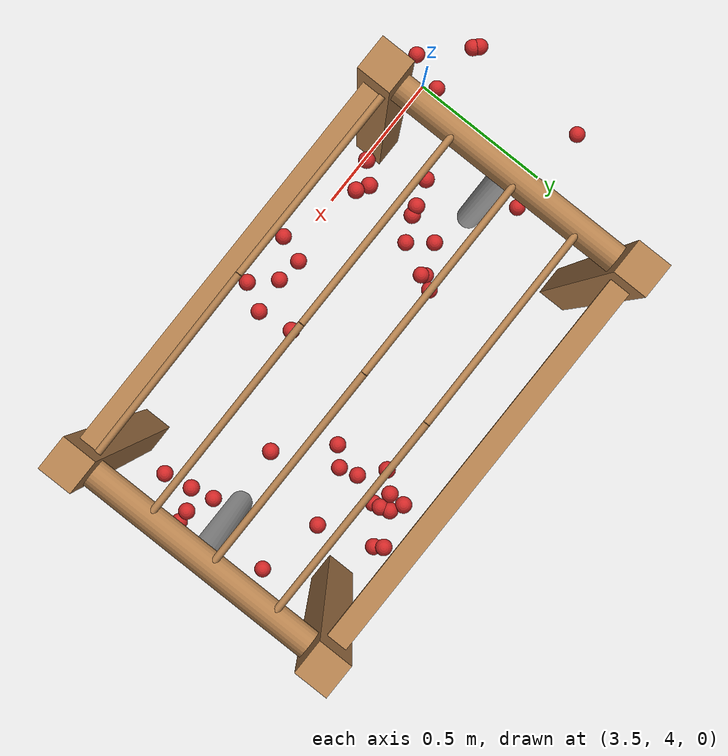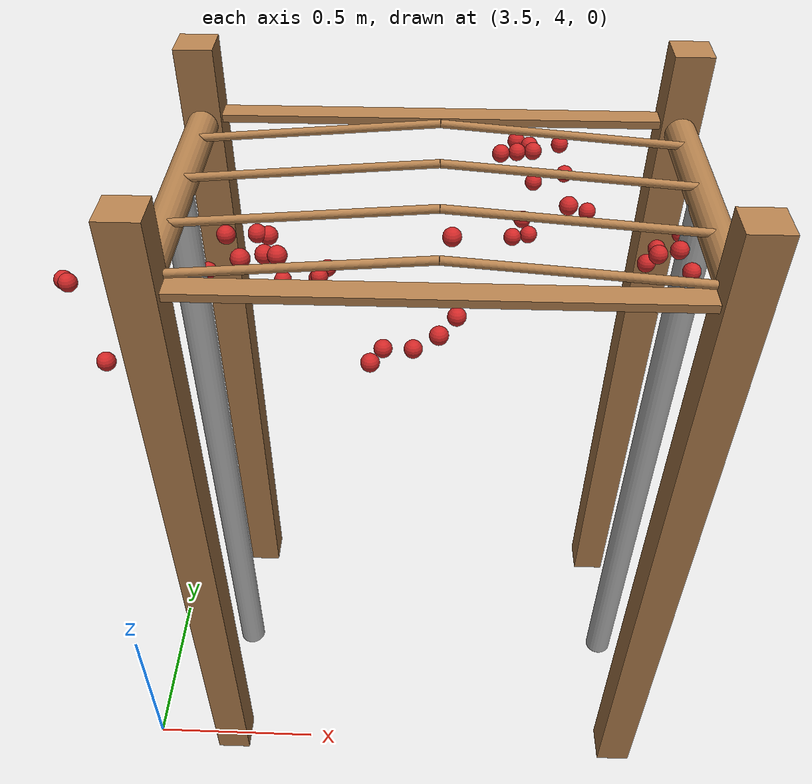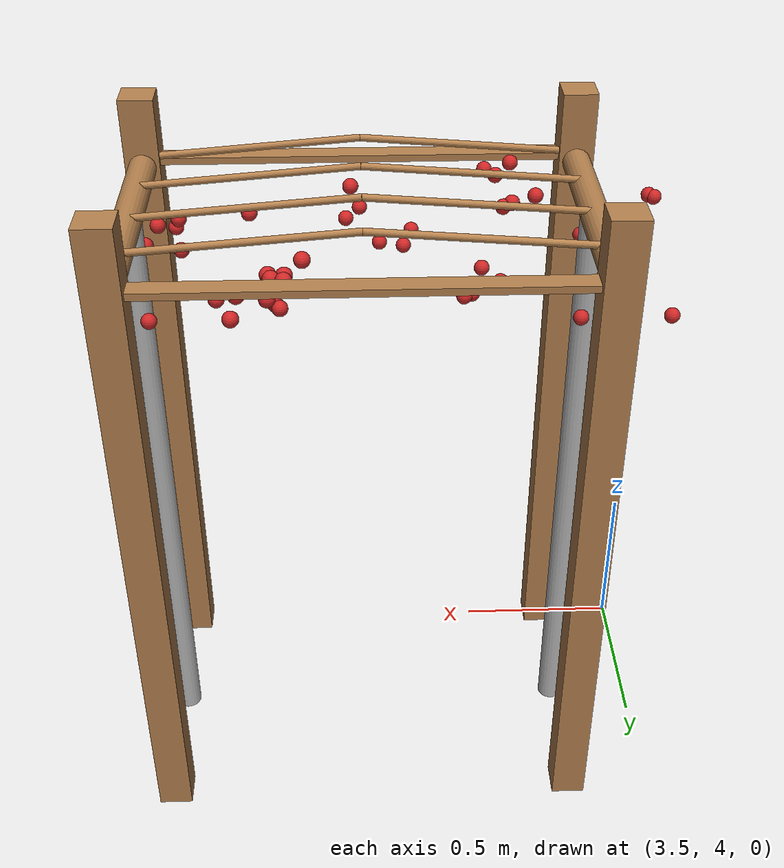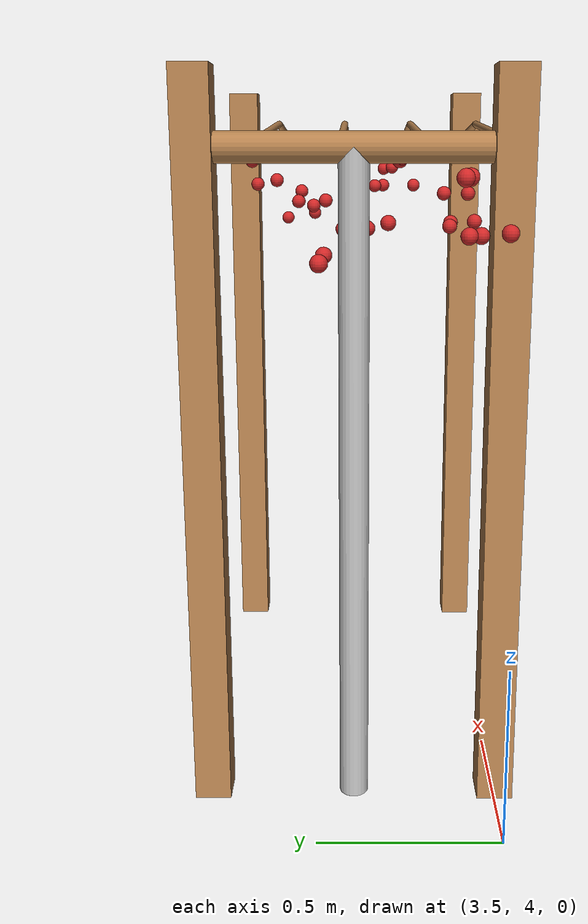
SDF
<sdf version="1.4">
 <model name="pergola">
  <include><name>post_26</name><pose>3.75 4.0 0 0 0 0</pose><uri>model://post</uri></include>
  <include><name>post_27</name><pose>3.75 4.800000000000001 0 0 0 0</pose><uri>model://post</uri></include>
  <include><name>post_33</name><pose>5.0 4.0 0 0 0 0</pose><uri>model://post</uri></include>
  <include><name>post_34</name><pose>5.0 4.800000000000001 0 0 0 0</pose><uri>model://post</uri></include>
  <link name="beam_26">
   <pose>4.375 4.0 1.81 0 0 0</pose>
   <collision name="collision"><geometry><box><size>1.25 0.06 0.02</size></box></geometry></collision>
   <visual name="visual">
    <geometry><box><size>1.25 0.06 0.02</size></box></geometry>
    <material><script><name>Gazebo/Wood</name></script></material>
   </visual>
   <inertial>
    <mass>5</mass>
    <inertia>
     <ixx>0.0016666666666666668</ixx>
     <ixy>0.0</ixy>
     <ixz>0.0</ixz>
     <iyy>0.6525416666666667</iyy>
     <iyz>0.0</iyz>
     <izz>0.6512083333333333</izz>
    </inertia>
   </inertial>
  </link>
  <link name="beam_27">
   <pose>4.375 4.800000000000001 1.81 0 0 0</pose>
   <collision name="collision"><geometry><box><size>1.25 0.06 0.02</size></box></geometry></collision>
   <visual name="visual">
    <geometry><box><size>1.25 0.06 0.02</size></box></geometry>
    <material><script><name>Gazebo/Wood</name></script></material>
   </visual>
   <inertial>
    <mass>5</mass>
    <inertia>
     <ixx>0.0016666666666666668</ixx>
     <ixy>0.0</ixy>
     <ixz>0.0</ixz>
     <iyy>0.6525416666666667</iyy>
     <iyz>0.0</iyz>
     <izz>0.6512083333333333</izz>
    </inertia>
   </inertial>
  </link>
  <include><name>tree_23</name><pose>3.75 4.4 0 0 0 0</pose><uri>model://tree_trunk</uri></include>
  <include><name>tree_29</name><pose>5.0 4.4 0 0 0 0</pose><uri>model://tree_trunk</uri></include>
  <link name="baseBranch_23">
   <pose>3.75 4.4 1.8 1.5707963267948966 0 0</pose>
   <collision name="collision">
    <geometry><cylinder><radius>0.04</radius><length>0.74</length></cylinder></geometry>
   </collision>
   <visual name="visual">
    <geometry><cylinder><radius>0.04</radius><length>0.74</length></cylinder></geometry>
    <material><script><name>Gazebo/WoodFloor</name></script></material>
   </visual>
   <inertial>
    <mass>10</mass>
    <inertia>
     <ixx>0.4603333333333333</ixx>
     <ixy>0.0</ixy>
     <ixz>0.0</ixz>
     <iyy>0.4603333333333333</iyy>
     <iyz>0.0</iyz>
     <izz>0.008</izz>
    </inertia>
   </inertial>
  </link>
  <link name="baseBranch_29">
   <pose>5.0 4.4 1.8 1.5707963267948966 0 0</pose>
   <collision name="collision">
    <geometry><cylinder><radius>0.04</radius><length>0.74</length></cylinder></geometry>
   </collision>
   <visual name="visual">
    <geometry><cylinder><radius>0.04</radius><length>0.74</length></cylinder></geometry>
    <material><script><name>Gazebo/WoodFloor</name></script></material>
   </visual>
   <inertial>
    <mass>10</mass>
    <inertia>
     <ixx>0.4603333333333333</ixx>
     <ixy>0.0</ixy>
     <ixz>0.0</ixz>
     <iyy>0.4603333333333333</iyy>
     <iyz>0.0</iyz>
     <izz>0.008</izz>
    </inertia>
   </inertial>
  </link>
  <link name="vine_184">
   <pose>4.0625 4.03 1.85 0 1.4909663410826592 0</pose>
   <collision name="collision">
    <geometry><cylinder><radius>0.01</radius><length>0.6269968101992226</length></cylinder></geometry>
   </collision>
   <visual name="visual">
    <geometry><cylinder><radius>0.01</radius><length>0.6269968101992226</length></cylinder></geometry>
    <material><script><name>Gazebo/WoodFloor</name></script></material>
   </visual>
   <inertial>
    <mass>5</mass>
    <inertia>
     <ixx>0.1639270833333333</ixx>
     <ixy>0.0</ixy>
     <ixz>0.0</ixz>
     <iyy>0.1639270833333333</iyy>
     <iyz>0.0</iyz>
     <izz>0.00025</izz>
    </inertia>
   </inertial>
  </link>
  <link name="vine_185">
   <pose>4.6875 4.03 1.85 0 -1.4909663410826592 0</pose>
   <collision name="collision">
    <geometry><cylinder><radius>0.01</radius><length>0.6269968101992226</length></cylinder></geometry>
   </collision>
   <visual name="visual">
    <geometry><cylinder><radius>0.01</radius><length>0.6269968101992226</length></cylinder></geometry>
    <material><script><name>Gazebo/WoodFloor</name></script></material>
   </visual>
   <inertial>
    <mass>5</mass>
    <inertia>
     <ixx>0.1639270833333333</ixx>
     <ixy>0.0</ixy>
     <ixz>0.0</ixz>
     <iyy>0.1639270833333333</iyy>
     <iyz>0.0</iyz>
     <izz>0.00025</izz>
    </inertia>
   </inertial>
  </link>
  <link name="vine_186">
   <pose>4.0625 4.23 1.85 0 1.4909663410826592 0</pose>
   <collision name="collision">
    <geometry><cylinder><radius>0.01</radius><length>0.6269968101992226</length></cylinder></geometry>
   </collision>
   <visual name="visual">
    <geometry><cylinder><radius>0.01</radius><length>0.6269968101992226</length></cylinder></geometry>
    <material><script><name>Gazebo/WoodFloor</name></script></material>
   </visual>
   <inertial>
    <mass>5</mass>
    <inertia>
     <ixx>0.1639270833333333</ixx>
     <ixy>0.0</ixy>
     <ixz>0.0</ixz>
     <iyy>0.1639270833333333</iyy>
     <iyz>0.0</iyz>
     <izz>0.00025</izz>
    </inertia>
   </inertial>
  </link>
  <link name="vine_187">
   <pose>4.6875 4.23 1.85 0 -1.4909663410826592 0</pose>
   <collision name="collision">
    <geometry><cylinder><radius>0.01</radius><length>0.6269968101992226</length></cylinder></geometry>
   </collision>
   <visual name="visual">
    <geometry><cylinder><radius>0.01</radius><length>0.6269968101992226</length></cylinder></geometry>
    <material><script><name>Gazebo/WoodFloor</name></script></material>
   </visual>
   <inertial>
    <mass>5</mass>
    <inertia>
     <ixx>0.1639270833333333</ixx>
     <ixy>0.0</ixy>
     <ixz>0.0</ixz>
     <iyy>0.1639270833333333</iyy>
     <iyz>0.0</iyz>
     <izz>0.00025</izz>
    </inertia>
   </inertial>
  </link>
  <link name="vine_188">
   <pose>4.0625 4.430000000000001 1.85 0 1.4909663410826592 0</pose>
   <collision name="collision">
    <geometry><cylinder><radius>0.01</radius><length>0.6269968101992226</length></cylinder></geometry>
   </collision>
   <visual name="visual">
    <geometry><cylinder><radius>0.01</radius><length>0.6269968101992226</length></cylinder></geometry>
    <material><script><name>Gazebo/WoodFloor</name></script></material>
   </visual>
   <inertial>
    <mass>5</mass>
    <inertia>
     <ixx>0.1639270833333333</ixx>
     <ixy>0.0</ixy>
     <ixz>0.0</ixz>
     <iyy>0.1639270833333333</iyy>
     <iyz>0.0</iyz>
     <izz>0.00025</izz>
    </inertia>
   </inertial>
  </link>
  <link name="vine_189">
   <pose>4.6875 4.430000000000001 1.85 0 -1.4909663410826592 0</pose>
   <collision name="collision">
    <geometry><cylinder><radius>0.01</radius><length>0.6269968101992226</length></cylinder></geometry>
   </collision>
   <visual name="visual">
    <geometry><cylinder><radius>0.01</radius><length>0.6269968101992226</length></cylinder></geometry>
    <material><script><name>Gazebo/WoodFloor</name></script></material>
   </visual>
   <inertial>
    <mass>5</mass>
    <inertia>
     <ixx>0.1639270833333333</ixx>
     <ixy>0.0</ixy>
     <ixz>0.0</ixz>
     <iyy>0.1639270833333333</iyy>
     <iyz>0.0</iyz>
     <izz>0.00025</izz>
    </inertia>
   </inertial>
  </link>
  <link name="vine_190">
   <pose>4.0625 4.630000000000001 1.85 0 1.4909663410826592 0</pose>
   <collision name="collision">
    <geometry><cylinder><radius>0.01</radius><length>0.6269968101992226</length></cylinder></geometry>
   </collision>
   <visual name="visual">
    <geometry><cylinder><radius>0.01</radius><length>0.6269968101992226</length></cylinder></geometry>
    <material><script><name>Gazebo/WoodFloor</name></script></material>
   </visual>
   <inertial>
    <mass>5</mass>
    <inertia>
     <ixx>0.1639270833333333</ixx>
     <ixy>0.0</ixy>
     <ixz>0.0</ixz>
     <iyy>0.1639270833333333</iyy>
     <iyz>0.0</iyz>
     <izz>0.00025</izz>
    </inertia>
   </inertial>
  </link>
  <link name="vine_191">
   <pose>4.6875 4.630000000000001 1.85 0 -1.4909663410826592 0</pose>
   <collision name="collision">
    <geometry><cylinder><radius>0.01</radius><length>0.6269968101992226</length></cylinder></geometry>
   </collision>
   <visual name="visual">
    <geometry><cylinder><radius>0.01</radius><length>0.6269968101992226</length></cylinder></geometry>
    <material><script><name>Gazebo/WoodFloor</name></script></material>
   </visual>
   <inertial>
    <mass>5</mass>
    <inertia>
     <ixx>0.1639270833333333</ixx>
     <ixy>0.0</ixy>
     <ixz>0.0</ixz>
     <iyy>0.1639270833333333</iyy>
     <iyz>0.0</iyz>
     <izz>0.00025</izz>
    </inertia>
   </inertial>
  </link>
  <link name="fruit_34">
   <pose>3.633366806264248 4.01842882549842 1.595375198827809 0 0 0</pose>
   <collision name="fruit_collision_34"><geometry><sphere><radius>0.022</radius></sphere></geometry></collision>
   <visual name="visual">
    <geometry><sphere><radius>0.022</radius></sphere></geometry>
    <material><script><name>Gazebo/Red</name></script></material>
   </visual>
   <inertial>
    <mass>0.05</mass>
    <inertia>
     <ixx>9.679999999999999e-06</ixx>
     <ixy>0.0</ixy>
     <ixz>0.0</ixz>
     <iyy>9.679999999999999e-06</iyy>
     <iyz>0.0</iyz>
     <izz>9.679999999999999e-06</izz>
    </inertia>
   </inertial>
   <sensor name="fruit_contact_34" type="contact">
    <plugin name="contact_plugin_34" filename="libcontact_plugin.so"/>
    <contact><collision>fruit_collision_34</collision><topic>fruit_contact_topic_34</topic></contact>
   </sensor>
  </link>
  <link name="fruit_53">
   <pose>4.760283831128383 4.5838649324843175 1.6637483692247248 0 0 0</pose>
   <collision name="fruit_collision_53"><geometry><sphere><radius>0.022</radius></sphere></geometry></collision>
   <visual name="visual">
    <geometry><sphere><radius>0.022</radius></sphere></geometry>
    <material><script><name>Gazebo/Red</name></script></material>
   </visual>
   <inertial>
    <mass>0.05</mass>
    <inertia>
     <ixx>9.679999999999999e-06</ixx>
     <ixy>0.0</ixy>
     <ixz>0.0</ixz>
     <iyy>9.679999999999999e-06</iyy>
     <iyz>0.0</iyz>
     <izz>9.679999999999999e-06</izz>
    </inertia>
   </inertial>
   <sensor name="fruit_contact_53" type="contact">
    <plugin name="contact_plugin_53" filename="libcontact_plugin.so"/>
    <contact><collision>fruit_collision_53</collision><topic>fruit_contact_topic_53</topic></contact>
   </sensor>
  </link>
  <link name="fruit_62">
   <pose>3.7765094138899555 4.477984269675128 1.5301336264787333 0 0 0</pose>
   <collision name="fruit_collision_62"><geometry><sphere><radius>0.022</radius></sphere></geometry></collision>
   <visual name="visual">
    <geometry><sphere><radius>0.022</radius></sphere></geometry>
    <material><script><name>Gazebo/Red</name></script></material>
   </visual>
   <inertial>
    <mass>0.05</mass>
    <inertia>
     <ixx>9.679999999999999e-06</ixx>
     <ixy>0.0</ixy>
     <ixz>0.0</ixz>
     <iyy>9.679999999999999e-06</iyy>
     <iyz>0.0</iyz>
     <izz>9.679999999999999e-06</izz>
    </inertia>
   </inertial>
   <sensor name="fruit_contact_62" type="contact">
    <plugin name="contact_plugin_62" filename="libcontact_plugin.so"/>
    <contact><collision>fruit_collision_62</collision><topic>fruit_contact_topic_62</topic></contact>
   </sensor>
  </link>
  <link name="fruit_69">
   <pose>4.380215721856354 4.046890502440738 1.667346945619753 0 0 0</pose>
   <collision name="fruit_collision_69"><geometry><sphere><radius>0.022</radius></sphere></geometry></collision>
   <visual name="visual">
    <geometry><sphere><radius>0.022</radius></sphere></geometry>
    <material><script><name>Gazebo/Red</name></script></material>
   </visual>
   <inertial>
    <mass>0.05</mass>
    <inertia>
     <ixx>9.679999999999999e-06</ixx>
     <ixy>0.0</ixy>
     <ixz>0.0</ixz>
     <iyy>9.679999999999999e-06</iyy>
     <iyz>0.0</iyz>
     <izz>9.679999999999999e-06</izz>
    </inertia>
   </inertial>
   <sensor name="fruit_contact_69" type="contact">
    <plugin name="contact_plugin_69" filename="libcontact_plugin.so"/>
    <contact><collision>fruit_collision_69</collision><topic>fruit_contact_topic_69</topic></contact>
   </sensor>
  </link>
  <link name="fruit_87">
   <pose>4.622908755261192 4.65855428247966 1.7032987600316671 0 0 0</pose>
   <collision name="fruit_collision_87"><geometry><sphere><radius>0.022</radius></sphere></geometry></collision>
   <visual name="visual">
    <geometry><sphere><radius>0.022</radius></sphere></geometry>
    <material><script><name>Gazebo/Red</name></script></material>
   </visual>
   <inertial>
    <mass>0.05</mass>
    <inertia>
     <ixx>9.679999999999999e-06</ixx>
     <ixy>0.0</ixy>
     <ixz>0.0</ixz>
     <iyy>9.679999999999999e-06</iyy>
     <iyz>0.0</iyz>
     <izz>9.679999999999999e-06</izz>
    </inertia>
   </inertial>
   <sensor name="fruit_contact_87" type="contact">
    <plugin name="contact_plugin_87" filename="libcontact_plugin.so"/>
    <contact><collision>fruit_collision_87</collision><topic>fruit_contact_topic_87</topic></contact>
   </sensor>
  </link>
  <link name="fruit_107">
   <pose>4.901337182179258 4.189911536854268 1.6806168631913343 0 0 0</pose>
   <collision name="fruit_collision_107"><geometry><sphere><radius>0.022</radius></sphere></geometry></collision>
   <visual name="visual">
    <geometry><sphere><radius>0.022</radius></sphere></geometry>
    <material><script><name>Gazebo/Red</name></script></material>
   </visual>
   <inertial>
    <mass>0.05</mass>
    <inertia>
     <ixx>9.679999999999999e-06</ixx>
     <ixy>0.0</ixy>
     <ixz>0.0</ixz>
     <iyy>9.679999999999999e-06</iyy>
     <iyz>0.0</iyz>
     <izz>9.679999999999999e-06</izz>
    </inertia>
   </inertial>
   <sensor name="fruit_contact_107" type="contact">
    <plugin name="contact_plugin_107" filename="libcontact_plugin.so"/>
    <contact><collision>fruit_collision_107</collision><topic>fruit_contact_topic_107</topic></contact>
   </sensor>
  </link>
  <link name="fruit_160">
   <pose>4.038669537416379 4.304206804560227 1.5968484310364162 0 0 0</pose>
   <collision name="fruit_collision_160"><geometry><sphere><radius>0.022</radius></sphere></geometry></collision>
   <visual name="visual">
    <geometry><sphere><radius>0.022</radius></sphere></geometry>
    <material><script><name>Gazebo/Red</name></script></material>
   </visual>
   <inertial>
    <mass>0.05</mass>
    <inertia>
     <ixx>9.679999999999999e-06</ixx>
     <ixy>0.0</ixy>
     <ixz>0.0</ixz>
     <iyy>9.679999999999999e-06</iyy>
     <iyz>0.0</iyz>
     <izz>9.679999999999999e-06</izz>
    </inertia>
   </inertial>
   <sensor name="fruit_contact_160" type="contact">
    <plugin name="contact_plugin_160" filename="libcontact_plugin.so"/>
    <contact><collision>fruit_collision_160</collision><topic>fruit_contact_topic_160</topic></contact>
   </sensor>
  </link>
  <link name="fruit_172">
   <pose>4.880836403724391 4.267831834348843 1.743617449965048 0 0 0</pose>
   <collision name="fruit_collision_172"><geometry><sphere><radius>0.022</radius></sphere></geometry></collision>
   <visual name="visual">
    <geometry><sphere><radius>0.022</radius></sphere></geometry>
    <material><script><name>Gazebo/Red</name></script></material>
   </visual>
   <inertial>
    <mass>0.05</mass>
    <inertia>
     <ixx>9.679999999999999e-06</ixx>
     <ixy>0.0</ixy>
     <ixz>0.0</ixz>
     <iyy>9.679999999999999e-06</iyy>
     <iyz>0.0</iyz>
     <izz>9.679999999999999e-06</izz>
    </inertia>
   </inertial>
   <sensor name="fruit_contact_172" type="contact">
    <plugin name="contact_plugin_172" filename="libcontact_plugin.so"/>
    <contact><collision>fruit_collision_172</collision><topic>fruit_contact_topic_172</topic></contact>
   </sensor>
  </link>
  <link name="fruit_210">
   <pose>4.948161622300664 4.545983665316929 1.5808179563262295 0 0 0</pose>
   <collision name="fruit_collision_210"><geometry><sphere><radius>0.022</radius></sphere></geometry></collision>
   <visual name="visual">
    <geometry><sphere><radius>0.022</radius></sphere></geometry>
    <material><script><name>Gazebo/Red</name></script></material>
   </visual>
   <inertial>
    <mass>0.05</mass>
    <inertia>
     <ixx>9.679999999999999e-06</ixx>
     <ixy>0.0</ixy>
     <ixz>0.0</ixz>
     <iyy>9.679999999999999e-06</iyy>
     <iyz>0.0</iyz>
     <izz>9.679999999999999e-06</izz>
    </inertia>
   </inertial>
   <sensor name="fruit_contact_210" type="contact">
    <plugin name="contact_plugin_210" filename="libcontact_plugin.so"/>
    <contact><collision>fruit_collision_210</collision><topic>fruit_contact_topic_210</topic></contact>
   </sensor>
  </link>
  <link name="fruit_224">
   <pose>4.529763545990417 4.628699070519771 1.7985438349184864 0 0 0</pose>
   <collision name="fruit_collision_224"><geometry><sphere><radius>0.022</radius></sphere></geometry></collision>
   <visual name="visual">
    <geometry><sphere><radius>0.022</radius></sphere></geometry>
    <material><script><name>Gazebo/Red</name></script></material>
   </visual>
   <inertial>
    <mass>0.05</mass>
    <inertia>
     <ixx>9.679999999999999e-06</ixx>
     <ixy>0.0</ixy>
     <ixz>0.0</ixz>
     <iyy>9.679999999999999e-06</iyy>
     <iyz>0.0</iyz>
     <izz>9.679999999999999e-06</izz>
    </inertia>
   </inertial>
   <sensor name="fruit_contact_224" type="contact">
    <plugin name="contact_plugin_224" filename="libcontact_plugin.so"/>
    <contact><collision>fruit_collision_224</collision><topic>fruit_contact_topic_224</topic></contact>
   </sensor>
  </link>
  <link name="fruit_238">
   <pose>4.691156114388676 4.7471253370753645 1.764832398004152 0 0 0</pose>
   <collision name="fruit_collision_238"><geometry><sphere><radius>0.022</radius></sphere></geometry></collision>
   <visual name="visual">
    <geometry><sphere><radius>0.022</radius></sphere></geometry>
    <material><script><name>Gazebo/Red</name></script></material>
   </visual>
   <inertial>
    <mass>0.05</mass>
    <inertia>
     <ixx>9.679999999999999e-06</ixx>
     <ixy>0.0</ixy>
     <ixz>0.0</ixz>
     <iyy>9.679999999999999e-06</iyy>
     <iyz>0.0</iyz>
     <izz>9.679999999999999e-06</izz>
    </inertia>
   </inertial>
   <sensor name="fruit_contact_238" type="contact">
    <plugin name="contact_plugin_238" filename="libcontact_plugin.so"/>
    <contact><collision>fruit_collision_238</collision><topic>fruit_contact_topic_238</topic></contact>
   </sensor>
  </link>
  <link name="fruit_249">
   <pose>4.404602122838481 4.2188006660193285 1.811094890870134 0 0 0</pose>
   <collision name="fruit_collision_249"><geometry><sphere><radius>0.022</radius></sphere></geometry></collision>
   <visual name="visual">
    <geometry><sphere><radius>0.022</radius></sphere></geometry>
    <material><script><name>Gazebo/Red</name></script></material>
   </visual>
   <inertial>
    <mass>0.05</mass>
    <inertia>
     <ixx>9.679999999999999e-06</ixx>
     <ixy>0.0</ixy>
     <ixz>0.0</ixz>
     <iyy>9.679999999999999e-06</iyy>
     <iyz>0.0</iyz>
     <izz>9.679999999999999e-06</izz>
    </inertia>
   </inertial>
   <sensor name="fruit_contact_249" type="contact">
    <plugin name="contact_plugin_249" filename="libcontact_plugin.so"/>
    <contact><collision>fruit_collision_249</collision><topic>fruit_contact_topic_249</topic></contact>
   </sensor>
  </link>
  <link name="fruit_259">
   <pose>3.990712170446 4.363968196288309 1.5848875369849074 0 0 0</pose>
   <collision name="fruit_collision_259"><geometry><sphere><radius>0.022</radius></sphere></geometry></collision>
   <visual name="visual">
    <geometry><sphere><radius>0.022</radius></sphere></geometry>
    <material><script><name>Gazebo/Red</name></script></material>
   </visual>
   <inertial>
    <mass>0.05</mass>
    <inertia>
     <ixx>9.679999999999999e-06</ixx>
     <ixy>0.0</ixy>
     <ixz>0.0</ixz>
     <iyy>9.679999999999999e-06</iyy>
     <iyz>0.0</iyz>
     <izz>9.679999999999999e-06</izz>
    </inertia>
   </inertial>
   <sensor name="fruit_contact_259" type="contact">
    <plugin name="contact_plugin_259" filename="libcontact_plugin.so"/>
    <contact><collision>fruit_collision_259</collision><topic>fruit_contact_topic_259</topic></contact>
   </sensor>
  </link>
  <link name="fruit_265">
   <pose>3.949120866838165 4.100029339596419 1.822753826685244 0 0 0</pose>
   <collision name="fruit_collision_265"><geometry><sphere><radius>0.022</radius></sphere></geometry></collision>
   <visual name="visual">
    <geometry><sphere><radius>0.022</radius></sphere></geometry>
    <material><script><name>Gazebo/Red</name></script></material>
   </visual>
   <inertial>
    <mass>0.05</mass>
    <inertia>
     <ixx>9.679999999999999e-06</ixx>
     <ixy>0.0</ixy>
     <ixz>0.0</ixz>
     <iyy>9.679999999999999e-06</iyy>
     <iyz>0.0</iyz>
     <izz>9.679999999999999e-06</izz>
    </inertia>
   </inertial>
   <sensor name="fruit_contact_265" type="contact">
    <plugin name="contact_plugin_265" filename="libcontact_plugin.so"/>
    <contact><collision>fruit_collision_265</collision><topic>fruit_contact_topic_265</topic></contact>
   </sensor>
  </link>
  <link name="fruit_270">
   <pose>4.873301298156742 4.3287470298461885 1.6788743682901799 0 0 0</pose>
   <collision name="fruit_collision_270"><geometry><sphere><radius>0.022</radius></sphere></geometry></collision>
   <visual name="visual">
    <geometry><sphere><radius>0.022</radius></sphere></geometry>
    <material><script><name>Gazebo/Red</name></script></material>
   </visual>
   <inertial>
    <mass>0.05</mass>
    <inertia>
     <ixx>9.679999999999999e-06</ixx>
     <ixy>0.0</ixy>
     <ixz>0.0</ixz>
     <iyy>9.679999999999999e-06</iyy>
     <iyz>0.0</iyz>
     <izz>9.679999999999999e-06</izz>
    </inertia>
   </inertial>
   <sensor name="fruit_contact_270" type="contact">
    <plugin name="contact_plugin_270" filename="libcontact_plugin.so"/>
    <contact><collision>fruit_collision_270</collision><topic>fruit_contact_topic_270</topic></contact>
   </sensor>
  </link>
  <link name="fruit_282">
   <pose>3.891070131414591 4.2468083384811885 1.787756085760015 0 0 0</pose>
   <collision name="fruit_collision_282"><geometry><sphere><radius>0.022</radius></sphere></geometry></collision>
   <visual name="visual">
    <geometry><sphere><radius>0.022</radius></sphere></geometry>
    <material><script><name>Gazebo/Red</name></script></material>
   </visual>
   <inertial>
    <mass>0.05</mass>
    <inertia>
     <ixx>9.679999999999999e-06</ixx>
     <ixy>0.0</ixy>
     <ixz>0.0</ixz>
     <iyy>9.679999999999999e-06</iyy>
     <iyz>0.0</iyz>
     <izz>9.679999999999999e-06</izz>
    </inertia>
   </inertial>
   <sensor name="fruit_contact_282" type="contact">
    <plugin name="contact_plugin_282" filename="libcontact_plugin.so"/>
    <contact><collision>fruit_collision_282</collision><topic>fruit_contact_topic_282</topic></contact>
   </sensor>
  </link>
  <link name="fruit_288">
   <pose>4.227019164909578 4.041900918584456 1.5899604447856857 0 0 0</pose>
   <collision name="fruit_collision_288"><geometry><sphere><radius>0.022</radius></sphere></geometry></collision>
   <visual name="visual">
    <geometry><sphere><radius>0.022</radius></sphere></geometry>
    <material><script><name>Gazebo/Red</name></script></material>
   </visual>
   <inertial>
    <mass>0.05</mass>
    <inertia>
     <ixx>9.679999999999999e-06</ixx>
     <ixy>0.0</ixy>
     <ixz>0.0</ixz>
     <iyy>9.679999999999999e-06</iyy>
     <iyz>0.0</iyz>
     <izz>9.679999999999999e-06</izz>
    </inertia>
   </inertial>
   <sensor name="fruit_contact_288" type="contact">
    <plugin name="contact_plugin_288" filename="libcontact_plugin.so"/>
    <contact><collision>fruit_collision_288</collision><topic>fruit_contact_topic_288</topic></contact>
   </sensor>
  </link>
  <link name="fruit_308">
   <pose>4.676552641435053 4.368536197949493 1.8061544421961644 0 0 0</pose>
   <collision name="fruit_collision_308"><geometry><sphere><radius>0.022</radius></sphere></geometry></collision>
   <visual name="visual">
    <geometry><sphere><radius>0.022</radius></sphere></geometry>
    <material><script><name>Gazebo/Red</name></script></material>
   </visual>
   <inertial>
    <mass>0.05</mass>
    <inertia>
     <ixx>9.679999999999999e-06</ixx>
     <ixy>0.0</ixy>
     <ixz>0.0</ixz>
     <iyy>9.679999999999999e-06</iyy>
     <iyz>0.0</iyz>
     <izz>9.679999999999999e-06</izz>
    </inertia>
   </inertial>
   <sensor name="fruit_contact_308" type="contact">
    <plugin name="contact_plugin_308" filename="libcontact_plugin.so"/>
    <contact><collision>fruit_collision_308</collision><topic>fruit_contact_topic_308</topic></contact>
   </sensor>
  </link>
  <link name="fruit_322">
   <pose>3.525226524510401 4.481536918393467 1.5332871454065264 0 0 0</pose>
   <collision name="fruit_collision_322"><geometry><sphere><radius>0.022</radius></sphere></geometry></collision>
   <visual name="visual">
    <geometry><sphere><radius>0.022</radius></sphere></geometry>
    <material><script><name>Gazebo/Red</name></script></material>
   </visual>
   <inertial>
    <mass>0.05</mass>
    <inertia>
     <ixx>9.679999999999999e-06</ixx>
     <ixy>0.0</ixy>
     <ixz>0.0</ixz>
     <iyy>9.679999999999999e-06</iyy>
     <iyz>0.0</iyz>
     <izz>9.679999999999999e-06</izz>
    </inertia>
   </inertial>
   <sensor name="fruit_contact_322" type="contact">
    <plugin name="contact_plugin_322" filename="libcontact_plugin.so"/>
    <contact><collision>fruit_collision_322</collision><topic>fruit_contact_topic_322</topic></contact>
   </sensor>
  </link>
  <link name="fruit_344">
   <pose>4.565134654667215 4.495200969120566 1.6389883102274374 0 0 0</pose>
   <collision name="fruit_collision_344"><geometry><sphere><radius>0.022</radius></sphere></geometry></collision>
   <visual name="visual">
    <geometry><sphere><radius>0.022</radius></sphere></geometry>
    <material><script><name>Gazebo/Red</name></script></material>
   </visual>
   <inertial>
    <mass>0.05</mass>
    <inertia>
     <ixx>9.679999999999999e-06</ixx>
     <ixy>0.0</ixy>
     <ixz>0.0</ixz>
     <iyy>9.679999999999999e-06</iyy>
     <iyz>0.0</iyz>
     <izz>9.679999999999999e-06</izz>
    </inertia>
   </inertial>
   <sensor name="fruit_contact_344" type="contact">
    <plugin name="contact_plugin_344" filename="libcontact_plugin.so"/>
    <contact><collision>fruit_collision_344</collision><topic>fruit_contact_topic_344</topic></contact>
   </sensor>
  </link>
  <link name="fruit_349">
   <pose>4.072631130821076 4.39942003250784 1.5671523716236124 0 0 0</pose>
   <collision name="fruit_collision_349"><geometry><sphere><radius>0.022</radius></sphere></geometry></collision>
   <visual name="visual">
    <geometry><sphere><radius>0.022</radius></sphere></geometry>
    <material><script><name>Gazebo/Red</name></script></material>
   </visual>
   <inertial>
    <mass>0.05</mass>
    <inertia>
     <ixx>9.679999999999999e-06</ixx>
     <ixy>0.0</ixy>
     <ixz>0.0</ixz>
     <iyy>9.679999999999999e-06</iyy>
     <iyz>0.0</iyz>
     <izz>9.679999999999999e-06</izz>
    </inertia>
   </inertial>
   <sensor name="fruit_contact_349" type="contact">
    <plugin name="contact_plugin_349" filename="libcontact_plugin.so"/>
    <contact><collision>fruit_collision_349</collision><topic>fruit_contact_topic_349</topic></contact>
   </sensor>
  </link>
  <link name="fruit_378">
   <pose>4.079487657517127 4.3892134790072985 1.580626363276587 0 0 0</pose>
   <collision name="fruit_collision_378"><geometry><sphere><radius>0.022</radius></sphere></geometry></collision>
   <visual name="visual">
    <geometry><sphere><radius>0.022</radius></sphere></geometry>
    <material><script><name>Gazebo/Red</name></script></material>
   </visual>
   <inertial>
    <mass>0.05</mass>
    <inertia>
     <ixx>9.679999999999999e-06</ixx>
     <ixy>0.0</ixy>
     <ixz>0.0</ixz>
     <iyy>9.679999999999999e-06</iyy>
     <iyz>0.0</iyz>
     <izz>9.679999999999999e-06</izz>
    </inertia>
   </inertial>
   <sensor name="fruit_contact_378" type="contact">
    <plugin name="contact_plugin_378" filename="libcontact_plugin.so"/>
    <contact><collision>fruit_collision_378</collision><topic>fruit_contact_topic_378</topic></contact>
   </sensor>
  </link>
  <link name="fruit_392">
   <pose>4.93560623024633 4.295808607858125 1.7385047480398297 0 0 0</pose>
   <collision name="fruit_collision_392"><geometry><sphere><radius>0.022</radius></sphere></geometry></collision>
   <visual name="visual">
    <geometry><sphere><radius>0.022</radius></sphere></geometry>
    <material><script><name>Gazebo/Red</name></script></material>
   </visual>
   <inertial>
    <mass>0.05</mass>
    <inertia>
     <ixx>9.679999999999999e-06</ixx>
     <ixy>0.0</ixy>
     <ixz>0.0</ixz>
     <iyy>9.679999999999999e-06</iyy>
     <iyz>0.0</iyz>
     <izz>9.679999999999999e-06</izz>
    </inertia>
   </inertial>
   <sensor name="fruit_contact_392" type="contact">
    <plugin name="contact_plugin_392" filename="libcontact_plugin.so"/>
    <contact><collision>fruit_collision_392</collision><topic>fruit_contact_topic_392</topic></contact>
   </sensor>
  </link>
  <link name="fruit_400">
   <pose>4.615216440864975 4.674719221989808 1.7822295084606339 0 0 0</pose>
   <collision name="fruit_collision_400"><geometry><sphere><radius>0.022</radius></sphere></geometry></collision>
   <visual name="visual">
    <geometry><sphere><radius>0.022</radius></sphere></geometry>
    <material><script><name>Gazebo/Red</name></script></material>
   </visual>
   <inertial>
    <mass>0.05</mass>
    <inertia>
     <ixx>9.679999999999999e-06</ixx>
     <ixy>0.0</ixy>
     <ixz>0.0</ixz>
     <iyy>9.679999999999999e-06</iyy>
     <iyz>0.0</iyz>
     <izz>9.679999999999999e-06</izz>
    </inertia>
   </inertial>
   <sensor name="fruit_contact_400" type="contact">
    <plugin name="contact_plugin_400" filename="libcontact_plugin.so"/>
    <contact><collision>fruit_collision_400</collision><topic>fruit_contact_topic_400</topic></contact>
   </sensor>
  </link>
  <link name="fruit_429">
   <pose>3.958687243296656 4.269579638132269 1.7781309295041927 0 0 0</pose>
   <collision name="fruit_collision_429"><geometry><sphere><radius>0.022</radius></sphere></geometry></collision>
   <visual name="visual">
    <geometry><sphere><radius>0.022</radius></sphere></geometry>
    <material><script><name>Gazebo/Red</name></script></material>
   </visual>
   <inertial>
    <mass>0.05</mass>
    <inertia>
     <ixx>9.679999999999999e-06</ixx>
     <ixy>0.0</ixy>
     <ixz>0.0</ixz>
     <iyy>9.679999999999999e-06</iyy>
     <iyz>0.0</iyz>
     <izz>9.679999999999999e-06</izz>
    </inertia>
   </inertial>
   <sensor name="fruit_contact_429" type="contact">
    <plugin name="contact_plugin_429" filename="libcontact_plugin.so"/>
    <contact><collision>fruit_collision_429</collision><topic>fruit_contact_topic_429</topic></contact>
   </sensor>
  </link>
  <link name="fruit_490">
   <pose>5.032059202406729 4.649384866764353 1.5592548612104384 0 0 0</pose>
   <collision name="fruit_collision_490"><geometry><sphere><radius>0.022</radius></sphere></geometry></collision>
   <visual name="visual">
    <geometry><sphere><radius>0.022</radius></sphere></geometry>
    <material><script><name>Gazebo/Red</name></script></material>
   </visual>
   <inertial>
    <mass>0.05</mass>
    <inertia>
     <ixx>9.679999999999999e-06</ixx>
     <ixy>0.0</ixy>
     <ixz>0.0</ixz>
     <iyy>9.679999999999999e-06</iyy>
     <iyz>0.0</iyz>
     <izz>9.679999999999999e-06</izz>
    </inertia>
   </inertial>
   <sensor name="fruit_contact_490" type="contact">
    <plugin name="contact_plugin_490" filename="libcontact_plugin.so"/>
    <contact><collision>fruit_collision_490</collision><topic>fruit_contact_topic_490</topic></contact>
   </sensor>
  </link>
  <link name="fruit_491">
   <pose>4.711412747126017 4.73081459424427 1.6885148850345155 0 0 0</pose>
   <collision name="fruit_collision_491"><geometry><sphere><radius>0.022</radius></sphere></geometry></collision>
   <visual name="visual">
    <geometry><sphere><radius>0.022</radius></sphere></geometry>
    <material><script><name>Gazebo/Red</name></script></material>
   </visual>
   <inertial>
    <mass>0.05</mass>
    <inertia>
     <ixx>9.679999999999999e-06</ixx>
     <ixy>0.0</ixy>
     <ixz>0.0</ixz>
     <iyy>9.679999999999999e-06</iyy>
     <iyz>0.0</iyz>
     <izz>9.679999999999999e-06</izz>
    </inertia>
   </inertial>
   <sensor name="fruit_contact_491" type="contact">
    <plugin name="contact_plugin_491" filename="libcontact_plugin.so"/>
    <contact><collision>fruit_collision_491</collision><topic>fruit_contact_topic_491</topic></contact>
   </sensor>
  </link>
  <link name="fruit_498">
   <pose>4.609971716999629 4.536473723125972 1.6208136425438973 0 0 0</pose>
   <collision name="fruit_collision_498"><geometry><sphere><radius>0.022</radius></sphere></geometry></collision>
   <visual name="visual">
    <geometry><sphere><radius>0.022</radius></sphere></geometry>
    <material><script><name>Gazebo/Red</name></script></material>
   </visual>
   <inertial>
    <mass>0.05</mass>
    <inertia>
     <ixx>9.679999999999999e-06</ixx>
     <ixy>0.0</ixy>
     <ixz>0.0</ixz>
     <iyy>9.679999999999999e-06</iyy>
     <iyz>0.0</iyz>
     <izz>9.679999999999999e-06</izz>
    </inertia>
   </inertial>
   <sensor name="fruit_contact_498" type="contact">
    <plugin name="contact_plugin_498" filename="libcontact_plugin.so"/>
    <contact><collision>fruit_collision_498</collision><topic>fruit_contact_topic_498</topic></contact>
   </sensor>
  </link>
  <link name="fruit_500">
   <pose>4.574293828577965 4.673791592810388 1.7792563415474076 0 0 0</pose>
   <collision name="fruit_collision_500"><geometry><sphere><radius>0.022</radius></sphere></geometry></collision>
   <visual name="visual">
    <geometry><sphere><radius>0.022</radius></sphere></geometry>
    <material><script><name>Gazebo/Red</name></script></material>
   </visual>
   <inertial>
    <mass>0.05</mass>
    <inertia>
     <ixx>9.679999999999999e-06</ixx>
     <ixy>0.0</ixy>
     <ixz>0.0</ixz>
     <iyy>9.679999999999999e-06</iyy>
     <iyz>0.0</iyz>
     <izz>9.679999999999999e-06</izz>
    </inertia>
   </inertial>
   <sensor name="fruit_contact_500" type="contact">
    <plugin name="contact_plugin_500" filename="libcontact_plugin.so"/>
    <contact><collision>fruit_collision_500</collision><topic>fruit_contact_topic_500</topic></contact>
   </sensor>
  </link>
  <link name="fruit_593">
   <pose>4.0970149834851375 4.431269434313582 1.5767674724481782 0 0 0</pose>
   <collision name="fruit_collision_593"><geometry><sphere><radius>0.022</radius></sphere></geometry></collision>
   <visual name="visual">
    <geometry><sphere><radius>0.022</radius></sphere></geometry>
    <material><script><name>Gazebo/Red</name></script></material>
   </visual>
   <inertial>
    <mass>0.05</mass>
    <inertia>
     <ixx>9.679999999999999e-06</ixx>
     <ixy>0.0</ixy>
     <ixz>0.0</ixz>
     <iyy>9.679999999999999e-06</iyy>
     <iyz>0.0</iyz>
     <izz>9.679999999999999e-06</izz>
    </inertia>
   </inertial>
   <sensor name="fruit_contact_593" type="contact">
    <plugin name="contact_plugin_593" filename="libcontact_plugin.so"/>
    <contact><collision>fruit_collision_593</collision><topic>fruit_contact_topic_593</topic></contact>
   </sensor>
  </link>
  <link name="fruit_637">
   <pose>3.9941846517248445 4.144162072520471 1.8050308067736482 0 0 0</pose>
   <collision name="fruit_collision_637"><geometry><sphere><radius>0.022</radius></sphere></geometry></collision>
   <visual name="visual">
    <geometry><sphere><radius>0.022</radius></sphere></geometry>
    <material><script><name>Gazebo/Red</name></script></material>
   </visual>
   <inertial>
    <mass>0.05</mass>
    <inertia>
     <ixx>9.679999999999999e-06</ixx>
     <ixy>0.0</ixy>
     <ixz>0.0</ixz>
     <iyy>9.679999999999999e-06</iyy>
     <iyz>0.0</iyz>
     <izz>9.679999999999999e-06</izz>
    </inertia>
   </inertial>
   <sensor name="fruit_contact_637" type="contact">
    <plugin name="contact_plugin_637" filename="libcontact_plugin.so"/>
    <contact><collision>fruit_collision_637</collision><topic>fruit_contact_topic_637</topic></contact>
   </sensor>
  </link>
  <link name="fruit_699">
   <pose>4.32307666453468 4.104375845248421 1.5818084306630642 0 0 0</pose>
   <collision name="fruit_collision_699"><geometry><sphere><radius>0.022</radius></sphere></geometry></collision>
   <visual name="visual">
    <geometry><sphere><radius>0.022</radius></sphere></geometry>
    <material><script><name>Gazebo/Red</name></script></material>
   </visual>
   <inertial>
    <mass>0.05</mass>
    <inertia>
     <ixx>9.679999999999999e-06</ixx>
     <ixy>0.0</ixy>
     <ixz>0.0</ixz>
     <iyy>9.679999999999999e-06</iyy>
     <iyz>0.0</iyz>
     <izz>9.679999999999999e-06</izz>
    </inertia>
   </inertial>
   <sensor name="fruit_contact_699" type="contact">
    <plugin name="contact_plugin_699" filename="libcontact_plugin.so"/>
    <contact><collision>fruit_collision_699</collision><topic>fruit_contact_topic_699</topic></contact>
   </sensor>
  </link>
  <link name="fruit_704">
   <pose>4.6069216463101 4.6994872238617 1.7841183687998756 0 0 0</pose>
   <collision name="fruit_collision_704"><geometry><sphere><radius>0.022</radius></sphere></geometry></collision>
   <visual name="visual">
    <geometry><sphere><radius>0.022</radius></sphere></geometry>
    <material><script><name>Gazebo/Red</name></script></material>
   </visual>
   <inertial>
    <mass>0.05</mass>
    <inertia>
     <ixx>9.679999999999999e-06</ixx>
     <ixy>0.0</ixy>
     <ixz>0.0</ixz>
     <iyy>9.679999999999999e-06</iyy>
     <iyz>0.0</iyz>
     <izz>9.679999999999999e-06</izz>
    </inertia>
   </inertial>
   <sensor name="fruit_contact_704" type="contact">
    <plugin name="contact_plugin_704" filename="libcontact_plugin.so"/>
    <contact><collision>fruit_collision_704</collision><topic>fruit_contact_topic_704</topic></contact>
   </sensor>
  </link>
  <link name="fruit_724">
   <pose>4.025128807509463 4.1257208515135195 1.8153296645640007 0 0 0</pose>
   <collision name="fruit_collision_724"><geometry><sphere><radius>0.022</radius></sphere></geometry></collision>
   <visual name="visual">
    <geometry><sphere><radius>0.022</radius></sphere></geometry>
    <material><script><name>Gazebo/Red</name></script></material>
   </visual>
   <inertial>
    <mass>0.05</mass>
    <inertia>
     <ixx>9.679999999999999e-06</ixx>
     <ixy>0.0</ixy>
     <ixz>0.0</ixz>
     <iyy>9.679999999999999e-06</iyy>
     <iyz>0.0</iyz>
     <izz>9.679999999999999e-06</izz>
    </inertia>
   </inertial>
   <sensor name="fruit_contact_724" type="contact">
    <plugin name="contact_plugin_724" filename="libcontact_plugin.so"/>
    <contact><collision>fruit_collision_724</collision><topic>fruit_contact_topic_724</topic></contact>
   </sensor>
  </link>
  <link name="fruit_749">
   <pose>4.420247086028941 4.118345352197846 1.6666211702336362 0 0 0</pose>
   <collision name="fruit_collision_749"><geometry><sphere><radius>0.022</radius></sphere></geometry></collision>
   <visual name="visual">
    <geometry><sphere><radius>0.022</radius></sphere></geometry>
    <material><script><name>Gazebo/Red</name></script></material>
   </visual>
   <inertial>
    <mass>0.05</mass>
    <inertia>
     <ixx>9.679999999999999e-06</ixx>
     <ixy>0.0</ixy>
     <ixz>0.0</ixz>
     <iyy>9.679999999999999e-06</iyy>
     <iyz>0.0</iyz>
     <izz>9.679999999999999e-06</izz>
    </inertia>
   </inertial>
   <sensor name="fruit_contact_749" type="contact">
    <plugin name="contact_plugin_749" filename="libcontact_plugin.so"/>
    <contact><collision>fruit_collision_749</collision><topic>fruit_contact_topic_749</topic></contact>
   </sensor>
  </link>
  <link name="fruit_760">
   <pose>3.983030439449194 4.275548061337519 1.7694901952917574 0 0 0</pose>
   <collision name="fruit_collision_760"><geometry><sphere><radius>0.022</radius></sphere></geometry></collision>
   <visual name="visual">
    <geometry><sphere><radius>0.022</radius></sphere></geometry>
    <material><script><name>Gazebo/Red</name></script></material>
   </visual>
   <inertial>
    <mass>0.05</mass>
    <inertia>
     <ixx>9.679999999999999e-06</ixx>
     <ixy>0.0</ixy>
     <ixz>0.0</ixz>
     <iyy>9.679999999999999e-06</iyy>
     <iyz>0.0</iyz>
     <izz>9.679999999999999e-06</izz>
    </inertia>
   </inertial>
   <sensor name="fruit_contact_760" type="contact">
    <plugin name="contact_plugin_760" filename="libcontact_plugin.so"/>
    <contact><collision>fruit_collision_760</collision><topic>fruit_contact_topic_760</topic></contact>
   </sensor>
  </link>
  <link name="fruit_764">
   <pose>3.7254317684951896 4.078823131782965 1.5833073090287686 0 0 0</pose>
   <collision name="fruit_collision_764"><geometry><sphere><radius>0.022</radius></sphere></geometry></collision>
   <visual name="visual">
    <geometry><sphere><radius>0.022</radius></sphere></geometry>
    <material><script><name>Gazebo/Red</name></script></material>
   </visual>
   <inertial>
    <mass>0.05</mass>
    <inertia>
     <ixx>9.679999999999999e-06</ixx>
     <ixy>0.0</ixy>
     <ixz>0.0</ixz>
     <iyy>9.679999999999999e-06</iyy>
     <iyz>0.0</iyz>
     <izz>9.679999999999999e-06</izz>
    </inertia>
   </inertial>
   <sensor name="fruit_contact_764" type="contact">
    <plugin name="contact_plugin_764" filename="libcontact_plugin.so"/>
    <contact><collision>fruit_collision_764</collision><topic>fruit_contact_topic_764</topic></contact>
   </sensor>
  </link>
  <link name="fruit_769">
   <pose>4.975698298085895 4.296820633239767 1.6786435153769832 0 0 0</pose>
   <collision name="fruit_collision_769"><geometry><sphere><radius>0.022</radius></sphere></geometry></collision>
   <visual name="visual">
    <geometry><sphere><radius>0.022</radius></sphere></geometry>
    <material><script><name>Gazebo/Red</name></script></material>
   </visual>
   <inertial>
    <mass>0.05</mass>
    <inertia>
     <ixx>9.679999999999999e-06</ixx>
     <ixy>0.0</ixy>
     <ixz>0.0</ixz>
     <iyy>9.679999999999999e-06</iyy>
     <iyz>0.0</iyz>
     <izz>9.679999999999999e-06</izz>
    </inertia>
   </inertial>
   <sensor name="fruit_contact_769" type="contact">
    <plugin name="contact_plugin_769" filename="libcontact_plugin.so"/>
    <contact><collision>fruit_collision_769</collision><topic>fruit_contact_topic_769</topic></contact>
   </sensor>
  </link>
  <link name="fruit_779">
   <pose>3.6690140674254508 4.115002760017415 1.5864018868082586 0 0 0</pose>
   <collision name="fruit_collision_779"><geometry><sphere><radius>0.022</radius></sphere></geometry></collision>
   <visual name="visual">
    <geometry><sphere><radius>0.022</radius></sphere></geometry>
    <material><script><name>Gazebo/Red</name></script></material>
   </visual>
   <inertial>
    <mass>0.05</mass>
    <inertia>
     <ixx>9.679999999999999e-06</ixx>
     <ixy>0.0</ixy>
     <ixz>0.0</ixz>
     <iyy>9.679999999999999e-06</iyy>
     <iyz>0.0</iyz>
     <izz>9.679999999999999e-06</izz>
    </inertia>
   </inertial>
   <sensor name="fruit_contact_779" type="contact">
    <plugin name="contact_plugin_779" filename="libcontact_plugin.so"/>
    <contact><collision>fruit_collision_779</collision><topic>fruit_contact_topic_779</topic></contact>
   </sensor>
  </link>
  <link name="fruit_787">
   <pose>3.5463802601715337 4.128592655514759 1.7305602625749137 0 0 0</pose>
   <collision name="fruit_collision_787"><geometry><sphere><radius>0.022</radius></sphere></geometry></collision>
   <visual name="visual">
    <geometry><sphere><radius>0.022</radius></sphere></geometry>
    <material><script><name>Gazebo/Red</name></script></material>
   </visual>
   <inertial>
    <mass>0.05</mass>
    <inertia>
     <ixx>9.679999999999999e-06</ixx>
     <ixy>0.0</ixy>
     <ixz>0.0</ixz>
     <iyy>9.679999999999999e-06</iyy>
     <iyz>0.0</iyz>
     <izz>9.679999999999999e-06</izz>
    </inertia>
   </inertial>
   <sensor name="fruit_contact_787" type="contact">
    <plugin name="contact_plugin_787" filename="libcontact_plugin.so"/>
    <contact><collision>fruit_collision_787</collision><topic>fruit_contact_topic_787</topic></contact>
   </sensor>
  </link>
  <link name="fruit_804">
   <pose>4.5955964966543394 4.5855541545861 1.635284576777862 0 0 0</pose>
   <collision name="fruit_collision_804"><geometry><sphere><radius>0.022</radius></sphere></geometry></collision>
   <visual name="visual">
    <geometry><sphere><radius>0.022</radius></sphere></geometry>
    <material><script><name>Gazebo/Red</name></script></material>
   </visual>
   <inertial>
    <mass>0.05</mass>
    <inertia>
     <ixx>9.679999999999999e-06</ixx>
     <ixy>0.0</ixy>
     <ixz>0.0</ixz>
     <iyy>9.679999999999999e-06</iyy>
     <iyz>0.0</iyz>
     <izz>9.679999999999999e-06</izz>
    </inertia>
   </inertial>
   <sensor name="fruit_contact_804" type="contact">
    <plugin name="contact_plugin_804" filename="libcontact_plugin.so"/>
    <contact><collision>fruit_collision_804</collision><topic>fruit_contact_topic_804</topic></contact>
   </sensor>
  </link>
  <link name="fruit_813">
   <pose>4.573858692228558 4.717558565276046 1.7878702406986655 0 0 0</pose>
   <collision name="fruit_collision_813"><geometry><sphere><radius>0.022</radius></sphere></geometry></collision>
   <visual name="visual">
    <geometry><sphere><radius>0.022</radius></sphere></geometry>
    <material><script><name>Gazebo/Red</name></script></material>
   </visual>
   <inertial>
    <mass>0.05</mass>
    <inertia>
     <ixx>9.679999999999999e-06</ixx>
     <ixy>0.0</ixy>
     <ixz>0.0</ixz>
     <iyy>9.679999999999999e-06</iyy>
     <iyz>0.0</iyz>
     <izz>9.679999999999999e-06</izz>
    </inertia>
   </inertial>
   <sensor name="fruit_contact_813" type="contact">
    <plugin name="contact_plugin_813" filename="libcontact_plugin.so"/>
    <contact><collision>fruit_collision_813</collision><topic>fruit_contact_topic_813</topic></contact>
   </sensor>
  </link>
  <link name="fruit_814">
   <pose>3.5335893553842546 4.1404649621881395 1.7292771531328086 0 0 0</pose>
   <collision name="fruit_collision_814"><geometry><sphere><radius>0.022</radius></sphere></geometry></collision>
   <visual name="visual">
    <geometry><sphere><radius>0.022</radius></sphere></geometry>
    <material><script><name>Gazebo/Red</name></script></material>
   </visual>
   <inertial>
    <mass>0.05</mass>
    <inertia>
     <ixx>9.679999999999999e-06</ixx>
     <ixy>0.0</ixy>
     <ixz>0.0</ixz>
     <iyy>9.679999999999999e-06</iyy>
     <iyz>0.0</iyz>
     <izz>9.679999999999999e-06</izz>
    </inertia>
   </inertial>
   <sensor name="fruit_contact_814" type="contact">
    <plugin name="contact_plugin_814" filename="libcontact_plugin.so"/>
    <contact><collision>fruit_collision_814</collision><topic>fruit_contact_topic_814</topic></contact>
   </sensor>
  </link>
  <link name="fruit_816">
   <pose>4.252844081491397 4.1128322027047375 1.5744207076341192 0 0 0</pose>
   <collision name="fruit_collision_816"><geometry><sphere><radius>0.022</radius></sphere></geometry></collision>
   <visual name="visual">
    <geometry><sphere><radius>0.022</radius></sphere></geometry>
    <material><script><name>Gazebo/Red</name></script></material>
   </visual>
   <inertial>
    <mass>0.05</mass>
    <inertia>
     <ixx>9.679999999999999e-06</ixx>
     <ixy>0.0</ixy>
     <ixz>0.0</ixz>
     <iyy>9.679999999999999e-06</iyy>
     <iyz>0.0</iyz>
     <izz>9.679999999999999e-06</izz>
    </inertia>
   </inertial>
   <sensor name="fruit_contact_816" type="contact">
    <plugin name="contact_plugin_816" filename="libcontact_plugin.so"/>
    <contact><collision>fruit_collision_816</collision><topic>fruit_contact_topic_816</topic></contact>
   </sensor>
  </link>
 </model>
</sdf>
